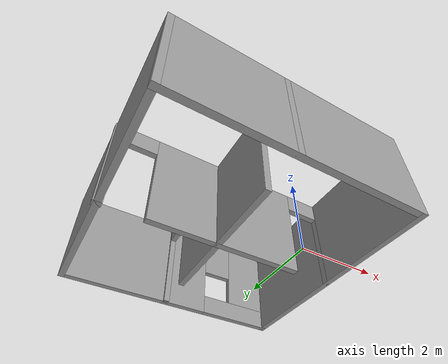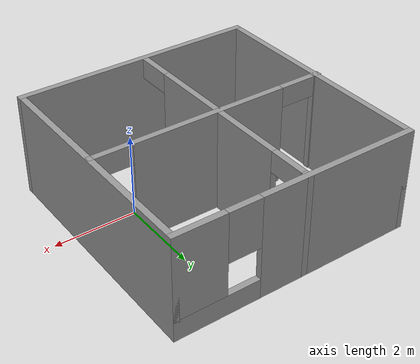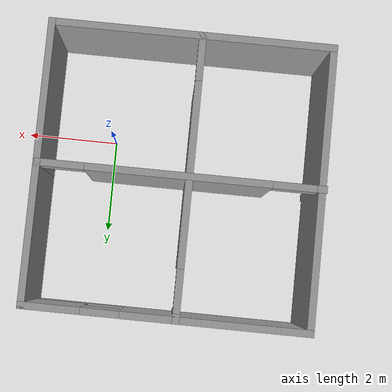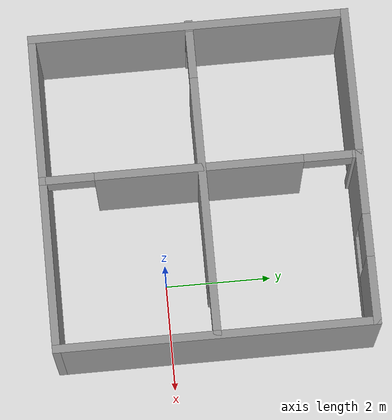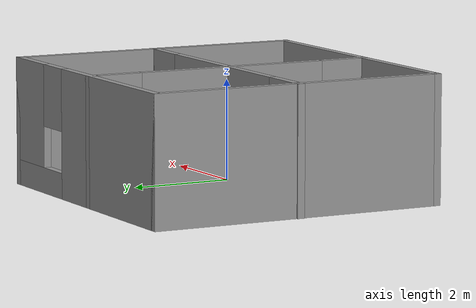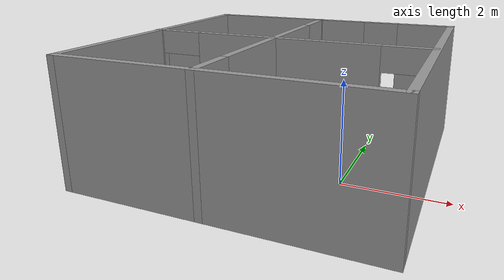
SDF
<?xml version='1.0'?>
<sdf version='1.7'>
  <model name='last_version'>
    <pose>-1.50434 0.831084 0 0 -0 0</pose>
    <link name='Wall_11'>
      <pose>-0.014578 0.009059 0 0 -0 0</pose>
      <visual name='Wall_11_Visual_0'>
        <pose>-2.89591 0 1.25 0 -0 0</pose>
        <geometry>
          <box>
            <size>0.208188 0.15 2.5</size>
          </box>
        </geometry>
        <material>
          <script>
            <uri>file://media/materials/scripts/gazebo.material</uri>
            <name>Gazebo/Grey</name>
          </script>
          <ambient>1 1 1 1</ambient>
        </material>
        <meta>
          <layer>0</layer>
        </meta>
      </visual>
      <collision name='Wall_11_Collision_0'>
        <geometry>
          <box>
            <size>0.208188 0.15 2.5</size>
          </box>
        </geometry>
        <pose>-2.89591 0 1.25 0 -0 0</pose>
      </collision>
      <visual name='Wall_11_Visual_1'>
        <pose>0.042399 0 1.25 0 -0 0</pose>
        <geometry>
          <box>
            <size>3.86842 0.15 2.5</size>
          </box>
        </geometry>
        <material>
          <script>
            <uri>file://media/materials/scripts/gazebo.material</uri>
            <name>Gazebo/Grey</name>
          </script>
          <ambient>1 1 1 1</ambient>
        </material>
        <meta>
          <layer>0</layer>
        </meta>
      </visual>
      <collision name='Wall_11_Collision_1'>
        <geometry>
          <box>
            <size>3.86842 0.15 2.5</size>
          </box>
        </geometry>
        <pose>0.042399 0 1.25 0 -0 0</pose>
      </collision>
      <visual name='Wall_11_Visual_2'>
        <pose>2.93831 0 1.25 0 -0 0</pose>
        <geometry>
          <box>
            <size>0.12339 0.15 2.5</size>
          </box>
        </geometry>
        <material>
          <script>
            <uri>file://media/materials/scripts/gazebo.material</uri>
            <name>Gazebo/Grey</name>
          </script>
          <ambient>1 1 1 1</ambient>
        </material>
        <meta>
          <layer>0</layer>
        </meta>
      </visual>
      <collision name='Wall_11_Collision_2'>
        <geometry>
          <box>
            <size>0.12339 0.15 2.5</size>
          </box>
        </geometry>
        <pose>2.93831 0 1.25 0 -0 0</pose>
      </collision>
      <visual name='Wall_11_Visual_3'>
        <pose>-2.34181 0 2.25 0 -0 0</pose>
        <geometry>
          <box>
            <size>0.9 0.15 0.5</size>
          </box>
        </geometry>
        <material>
          <script>
            <uri>file://media/materials/scripts/gazebo.material</uri>
            <name>Gazebo/Grey</name>
          </script>
          <ambient>1 1 1 1</ambient>
        </material>
        <meta>
          <layer>0</layer>
        </meta>
      </visual>
      <collision name='Wall_11_Collision_3'>
        <geometry>
          <box>
            <size>0.9 0.15 0.5</size>
          </box>
        </geometry>
        <pose>-2.34181 0 2.25 0 -0 0</pose>
      </collision>
      <visual name='Wall_11_Visual_4'>
        <pose>2.42661 0 2.25 0 -0 0</pose>
        <geometry>
          <box>
            <size>0.9 0.15 0.5</size>
          </box>
        </geometry>
        <material>
          <script>
            <uri>file://media/materials/scripts/gazebo.material</uri>
            <name>Gazebo/Grey</name>
          </script>
          <ambient>1 1 1 1</ambient>
        </material>
        <meta>
          <layer>0</layer>
        </meta>
      </visual>
      <collision name='Wall_11_Collision_4'>
        <geometry>
          <box>
            <size>0.9 0.15 0.5</size>
          </box>
        </geometry>
        <pose>2.42661 0 2.25 0 -0 0</pose>
      </collision>
    </link>
    <link name='Wall_15'>
      <pose>-0.195162 0 0 0 -0 -1.5708</pose>
      <visual name='Wall_15_Visual_0'>
        <pose>-2.89591 0 1.25 0 -0 0</pose>
        <geometry>
          <box>
            <size>0.208188 0.15 2.5</size>
          </box>
        </geometry>
        <material>
          <script>
            <uri>file://media/materials/scripts/gazebo.material</uri>
            <name>Gazebo/Grey</name>
          </script>
          <ambient>1 1 1 1</ambient>
        </material>
        <meta>
          <layer>0</layer>
        </meta>
      </visual>
      <collision name='Wall_15_Collision_0'>
        <geometry>
          <box>
            <size>0.208188 0.15 2.5</size>
          </box>
        </geometry>
        <pose>-2.89591 0 1.25 0 -0 0</pose>
      </collision>
      <visual name='Wall_15_Visual_1'>
        <pose>0.042399 0 1.25 0 -0 0</pose>
        <geometry>
          <box>
            <size>3.86842 0.15 2.5</size>
          </box>
        </geometry>
        <material>
          <script>
            <uri>file://media/materials/scripts/gazebo.material</uri>
            <name>Gazebo/Grey</name>
          </script>
          <ambient>1 1 1 1</ambient>
        </material>
        <meta>
          <layer>0</layer>
        </meta>
      </visual>
      <collision name='Wall_15_Collision_1'>
        <geometry>
          <box>
            <size>3.86842 0.15 2.5</size>
          </box>
        </geometry>
        <pose>0.042399 0 1.25 0 -0 0</pose>
      </collision>
      <visual name='Wall_15_Visual_2'>
        <pose>2.93831 0 1.25 0 -0 0</pose>
        <geometry>
          <box>
            <size>0.12339 0.15 2.5</size>
          </box>
        </geometry>
        <material>
          <script>
            <uri>file://media/materials/scripts/gazebo.material</uri>
            <name>Gazebo/Grey</name>
          </script>
          <ambient>1 1 1 1</ambient>
        </material>
        <meta>
          <layer>0</layer>
        </meta>
      </visual>
      <collision name='Wall_15_Collision_2'>
        <geometry>
          <box>
            <size>0.12339 0.15 2.5</size>
          </box>
        </geometry>
        <pose>2.93831 0 1.25 0 -0 0</pose>
      </collision>
      <visual name='Wall_15_Visual_3'>
        <pose>-2.34181 0 2.25 0 -0 0</pose>
        <geometry>
          <box>
            <size>0.9 0.15 0.5</size>
          </box>
        </geometry>
        <material>
          <script>
            <uri>file://media/materials/scripts/gazebo.material</uri>
            <name>Gazebo/Grey</name>
          </script>
          <ambient>1 1 1 1</ambient>
        </material>
        <meta>
          <layer>0</layer>
        </meta>
      </visual>
      <collision name='Wall_15_Collision_3'>
        <geometry>
          <box>
            <size>0.9 0.15 0.5</size>
          </box>
        </geometry>
        <pose>-2.34181 0 2.25 0 -0 0</pose>
      </collision>
      <visual name='Wall_15_Visual_4'>
        <pose>2.42661 0 2.25 0 -0 0</pose>
        <geometry>
          <box>
            <size>0.9 0.15 0.5</size>
          </box>
        </geometry>
        <material>
          <script>
            <uri>file://media/materials/scripts/gazebo.material</uri>
            <name>Gazebo/Grey</name>
          </script>
          <ambient>1 1 1 1</ambient>
        </material>
        <meta>
          <layer>0</layer>
        </meta>
      </visual>
      <collision name='Wall_15_Collision_4'>
        <geometry>
          <box>
            <size>0.9 0.15 0.5</size>
          </box>
        </geometry>
        <pose>2.42661 0 2.25 0 -0 0</pose>
      </collision>
    </link>
    <link name='Wall_3'>
      <pose>0.014578 2.925 0 0 -0 0</pose>
      <visual name='Wall_3_Visual_0'>
        <pose>-1.033 0 1.25 0 -0 0</pose>
        <geometry>
          <box>
            <size>3.93399 0.15 2.5</size>
          </box>
        </geometry>
        <material>
          <script>
            <uri>file://media/materials/scripts/gazebo.material</uri>
            <name>Gazebo/Grey</name>
          </script>
          <ambient>1 1 1 1</ambient>
        </material>
        <meta>
          <layer>0</layer>
        </meta>
      </visual>
      <collision name='Wall_3_Collision_0'>
        <geometry>
          <box>
            <size>3.93399 0.15 2.5</size>
          </box>
        </geometry>
        <pose>-1.033 0 1.25 0 -0 0</pose>
      </collision>
      <visual name='Wall_3_Visual_1'>
        <pose>1.967 0 0.25 0 -0 0</pose>
        <geometry>
          <box>
            <size>2.06601 0.15 0.5</size>
          </box>
        </geometry>
        <material>
          <script>
            <uri>file://media/materials/scripts/gazebo.material</uri>
            <name>Gazebo/Grey</name>
          </script>
          <ambient>1 1 1 1</ambient>
        </material>
        <meta>
          <layer>0</layer>
        </meta>
      </visual>
      <collision name='Wall_3_Collision_1'>
        <geometry>
          <box>
            <size>2.06601 0.15 0.5</size>
          </box>
        </geometry>
        <pose>1.967 0 0.25 0 -0 0</pose>
      </collision>
      <visual name='Wall_3_Visual_2'>
        <pose>2.367 0 1.5 0 -0 0</pose>
        <geometry>
          <box>
            <size>1.26601 0.15 2</size>
          </box>
        </geometry>
        <material>
          <script>
            <uri>file://media/materials/scripts/gazebo.material</uri>
            <name>Gazebo/Grey</name>
          </script>
          <ambient>1 1 1 1</ambient>
        </material>
        <meta>
          <layer>0</layer>
        </meta>
      </visual>
      <collision name='Wall_3_Collision_2'>
        <geometry>
          <box>
            <size>1.26601 0.15 2</size>
          </box>
        </geometry>
        <pose>2.367 0 1.5 0 -0 0</pose>
      </collision>
      <visual name='Wall_3_Visual_3'>
        <pose>1.33399 0 1.9 0 -0 0</pose>
        <geometry>
          <box>
            <size>0.8 0.15 1.2</size>
          </box>
        </geometry>
        <material>
          <script>
            <uri>file://media/materials/scripts/gazebo.material</uri>
            <name>Gazebo/Grey</name>
          </script>
          <ambient>1 1 1 1</ambient>
        </material>
        <meta>
          <layer>0</layer>
        </meta>
      </visual>
      <collision name='Wall_3_Collision_3'>
        <geometry>
          <box>
            <size>0.8 0.15 1.2</size>
          </box>
        </geometry>
        <pose>1.33399 0 1.9 0 -0 0</pose>
      </collision>
    </link>
    <link name='Wall_4'>
      <collision name='Wall_4_Collision'>
        <geometry>
          <box>
            <size>6 0.15 2.5</size>
          </box>
        </geometry>
        <pose>0 0 1.25 0 -0 0</pose>
      </collision>
      <visual name='Wall_4_Visual'>
        <pose>0 0 1.25 0 -0 0</pose>
        <geometry>
          <box>
            <size>6 0.15 2.5</size>
          </box>
        </geometry>
        <material>
          <script>
            <uri>file://media/materials/scripts/gazebo.material</uri>
            <name>Gazebo/Grey</name>
          </script>
          <ambient>1 1 1 1</ambient>
        </material>
        <meta>
          <layer>0</layer>
        </meta>
      </visual>
      <pose>2.93958 0 0 0 -0 -1.5708</pose>
    </link>
    <link name='Wall_5'>
      <collision name='Wall_5_Collision'>
        <geometry>
          <box>
            <size>6 0.15 2.5</size>
          </box>
        </geometry>
        <pose>0 0 1.25 0 -0 0</pose>
      </collision>
      <visual name='Wall_5_Visual'>
        <pose>0 0 1.25 0 -0 0</pose>
        <geometry>
          <box>
            <size>6 0.15 2.5</size>
          </box>
        </geometry>
        <material>
          <script>
            <uri>file://media/materials/scripts/gazebo.material</uri>
            <name>Gazebo/Grey</name>
          </script>
          <ambient>1 1 1 1</ambient>
        </material>
        <meta>
          <layer>0</layer>
        </meta>
      </visual>
      <pose>0.014578 -2.925 0 0 -0 3.14159</pose>
    </link>
    <link name='Wall_7'>
      <collision name='Wall_7_Collision'>
        <geometry>
          <box>
            <size>6 0.15 2.5</size>
          </box>
        </geometry>
        <pose>0 0 1.25 0 -0 0</pose>
      </collision>
      <visual name='Wall_7_Visual'>
        <pose>0 0 1.25 0 -0 0</pose>
        <geometry>
          <box>
            <size>6 0.15 2.5</size>
          </box>
        </geometry>
        <material>
          <script>
            <uri>file://media/materials/scripts/gazebo.material</uri>
            <name>Gazebo/Grey</name>
          </script>
          <ambient>1 1 1 1</ambient>
        </material>
        <meta>
          <layer>0</layer>
        </meta>
      </visual>
      <pose>-2.91042 0 0 0 -0 1.5708</pose>
    </link>
    <static>1</static>
  </model>
</sdf>
